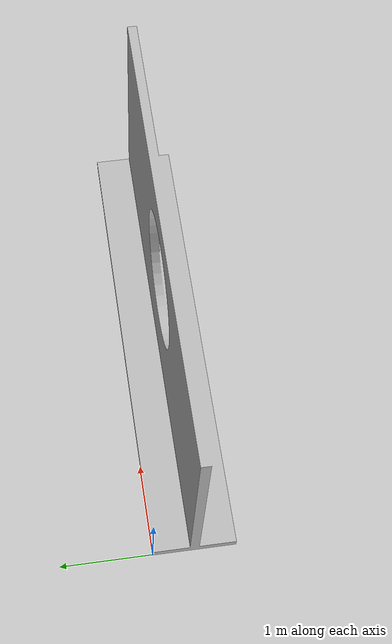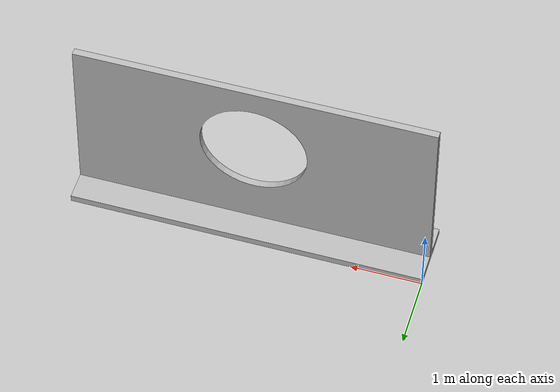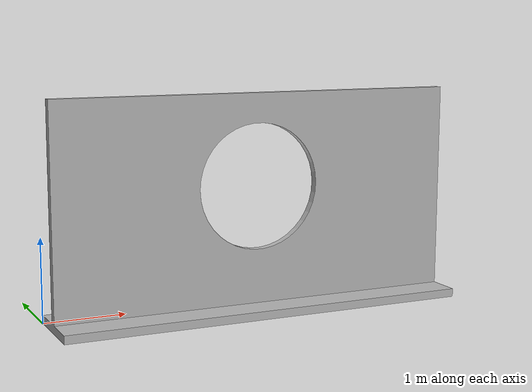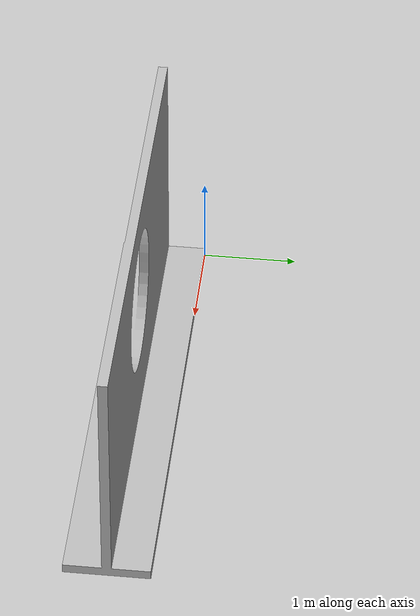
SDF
<?xml version="1.0" ?>
<sdf version="1.5">
  <model name="hole">
    <static>true</static>
    <link name="link">
      <collision name="collision">
        <geometry>
          <mesh>
            <uri>model://hole/meshes/hole.dae</uri>
          </mesh>
        </geometry>
      </collision>
      <visual name="visual">
        <geometry>
          <mesh>
            <uri>model://hole/meshes/hole.dae</uri>
          </mesh>
        </geometry>
      </visual>
    </link>
  </model>
</sdf>
